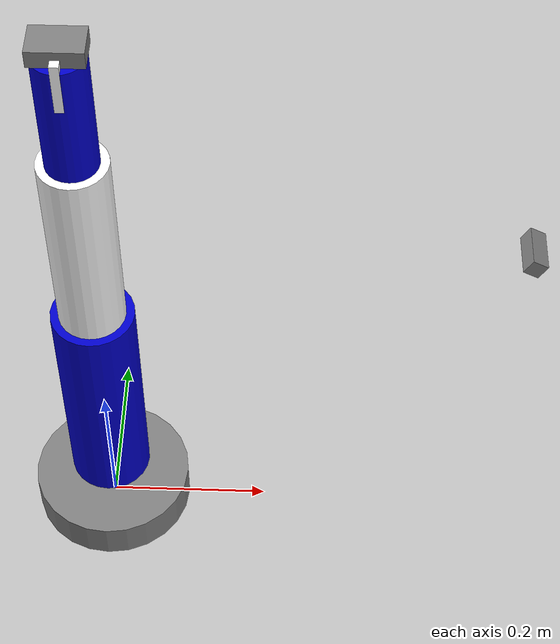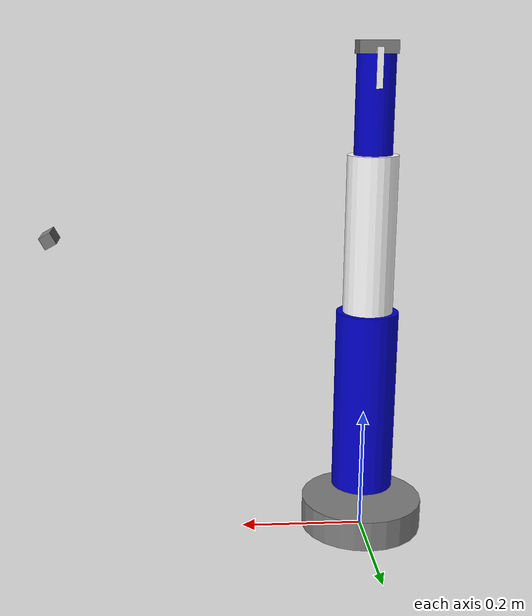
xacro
<?xml version="1.0"?>
<robot xmlns:xacro="http://www.ros.org/wiki/xacro" name="robot_arm">

  <!-- Constants -->
  <xacro:property name="PI" value="3.14159265359"/>

  <!-- Material definitions -->
  <material name="blue">
    <color rgba="0.0 0.0 0.8 1.0"/>
  </material>

  <material name="white">
    <color rgba="1.0 1.0 1.0 1.0"/>
  </material>

  <material name="grey">
    <color rgba="0.5 0.5 0.5 1.0"/>
  </material>

  <!-- World link (fixed reference) -->
  <link name="world"/>

  <!-- Base link -->
  <link name="base_link">
    <visual>
      <geometry>
        <cylinder radius="0.1" length="0.05"/>
      </geometry>
      <material name="grey"/>
    </visual>
    <collision>
      <geometry>
        <cylinder radius="0.1" length="0.05"/>
      </geometry>
    </collision>
    <inertial>
      <mass value="1.0"/>
      <inertia ixx="0.001" ixy="0.0" ixz="0.0" iyy="0.001" iyz="0.0" izz="0.001"/>
    </inertial>
  </link>

  <joint name="world_to_base" type="fixed">
    <parent link="world"/>
    <child link="base_link"/>
    <origin xyz="0 0 0.025" rpy="0 0 0"/>
  </joint>

  <!-- Link 1 (shoulder) -->
  <link name="link1">
    <visual>
      <geometry>
        <cylinder radius="0.05" length="0.3"/>
      </geometry>
      <origin xyz="0 0 0.15" rpy="0 0 0"/>
      <material name="blue"/>
    </visual>
    <collision>
      <geometry>
        <cylinder radius="0.05" length="0.3"/>
      </geometry>
      <origin xyz="0 0 0.15" rpy="0 0 0"/>
    </collision>
    <inertial>
      <mass value="0.5"/>
      <origin xyz="0 0 0.15" rpy="0 0 0"/>
      <inertia ixx="0.004" ixy="0.0" ixz="0.0" iyy="0.004" iyz="0.0" izz="0.001"/>
    </inertial>
  </link>

  <joint name="joint1" type="revolute">
    <parent link="base_link"/>
    <child link="link1"/>
    <origin xyz="0 0 0.05" rpy="0 0 0"/>
    <axis xyz="0 0 1"/>
    <limit lower="${-PI}" upper="${PI}" effort="100" velocity="1.0"/>
    <dynamics damping="10.0" friction="1.0"/>
  </joint>

  <!-- Link 2 (elbow) -->
  <link name="link2">
    <visual>
      <geometry>
        <cylinder radius="0.04" length="0.25"/>
      </geometry>
      <origin xyz="0 0 0.125" rpy="0 0 0"/>
      <material name="white"/>
    </visual>
    <collision>
      <geometry>
        <cylinder radius="0.04" length="0.25"/>
      </geometry>
      <origin xyz="0 0 0.125" rpy="0 0 0"/>
    </collision>
    <inertial>
      <mass value="0.3"/>
      <origin xyz="0 0 0.125" rpy="0 0 0"/>
      <inertia ixx="0.002" ixy="0.0" ixz="0.0" iyy="0.002" iyz="0.0" izz="0.0005"/>
    </inertial>
  </link>

  <joint name="joint2" type="revolute">
    <parent link="link1"/>
    <child link="link2"/>
    <origin xyz="0 0 0.3" rpy="0 0 0"/>
    <axis xyz="0 1 0"/>
    <limit lower="${-PI/2}" upper="${PI/2}" effort="50" velocity="1.0"/>
    <dynamics damping="10.0" friction="1.0"/>
  </joint>

  <!-- Link 3 (wrist) -->
  <link name="link3">
    <visual>
      <geometry>
        <cylinder radius="0.03" length="0.15"/>
      </geometry>
      <origin xyz="0 0 0.075" rpy="0 0 0"/>
      <material name="blue"/>
    </visual>
    <collision>
      <geometry>
        <cylinder radius="0.03" length="0.15"/>
      </geometry>
      <origin xyz="0 0 0.075" rpy="0 0 0"/>
    </collision>
    <inertial>
      <mass value="0.2"/>
      <origin xyz="0 0 0.075" rpy="0 0 0"/>
      <inertia ixx="0.0005" ixy="0.0" ixz="0.0" iyy="0.0005" iyz="0.0" izz="0.0002"/>
    </inertial>
  </link>

  <joint name="joint3" type="revolute">
    <parent link="link2"/>
    <child link="link3"/>
    <origin xyz="0 0 0.25" rpy="0 0 0"/>
    <axis xyz="0 1 0"/>
    <limit lower="${-PI/2}" upper="${PI/2}" effort="30" velocity="1.0"/>
    <dynamics damping="10.0" friction="1.0"/>
  </joint>

  <!-- Gripper base -->
  <link name="gripper_base">
    <visual>
      <geometry>
        <box size="0.06 0.04 0.02"/>
      </geometry>
      <material name="grey"/>
    </visual>
    <collision>
      <geometry>
        <box size="0.06 0.04 0.02"/>
      </geometry>
    </collision>
    <inertial>
      <mass value="0.1"/>
      <inertia ixx="0.0001" ixy="0.0" ixz="0.0" iyy="0.0001" iyz="0.0" izz="0.0001"/>
    </inertial>
  </link>

  <joint name="wrist_to_gripper" type="fixed">
    <parent link="link3"/>
    <child link="gripper_base"/>
    <origin xyz="0 0 0.16" rpy="0 0 0"/>
  </joint>

  <!-- Left gripper finger -->
  <link name="gripper_left">
    <visual>
      <geometry>
        <box size="0.01 0.02 0.06"/>
      </geometry>
      <origin xyz="0 0 -0.03" rpy="0 0 0"/>
      <material name="white"/>
    </visual>
    <collision>
      <geometry>
        <box size="0.01 0.02 0.06"/>
      </geometry>
      <origin xyz="0 0 -0.03" rpy="0 0 0"/>
    </collision>
    <inertial>
      <mass value="0.05"/>
      <origin xyz="0 0 -0.03" rpy="0 0 0"/>
      <inertia ixx="0.00001" ixy="0.0" ixz="0.0" iyy="0.00001" iyz="0.0" izz="0.00001"/>
    </inertial>
  </link>

  <joint name="gripper_left_joint" type="prismatic">
    <parent link="gripper_base"/>
    <child link="gripper_left"/>
    <origin xyz="0 0.02 0" rpy="0 0 0"/>
    <axis xyz="0 1 0"/>
    <limit lower="0" upper="0.03" effort="10" velocity="0.1"/>
  </joint>

  <!-- Right gripper finger -->
  <link name="gripper_right">
    <visual>
      <geometry>
        <box size="0.01 0.02 0.06"/>
      </geometry>
      <origin xyz="0 0 -0.03" rpy="0 0 0"/>
      <material name="white"/>
    </visual>
    <collision>
      <geometry>
        <box size="0.01 0.02 0.06"/>
      </geometry>
      <origin xyz="0 0 -0.03" rpy="0 0 0"/>
    </collision>
    <inertial>
      <mass value="0.05"/>
      <origin xyz="0 0 -0.03" rpy="0 0 0"/>
      <inertia ixx="0.00001" ixy="0.0" ixz="0.0" iyy="0.00001" iyz="0.0" izz="0.00001"/>
    </inertial>
  </link>

  <joint name="gripper_right_joint" type="prismatic">
    <parent link="gripper_base"/>
    <child link="gripper_right"/>
    <origin xyz="0 -0.02 0" rpy="0 0 0"/>
    <axis xyz="0 1 0"/>
    <limit lower="-0.03" upper="0" effort="10" velocity="0.1"/>
  </joint>

  <!-- Gazebo plugins and controllers -->
  <gazebo>
    <plugin name="gazebo_ros_control" filename="libgazebo_ros_control.so">
      <robotNamespace>/robot_arm</robotNamespace>
      <robotSimType>gazebo_ros_control/DefaultRobotHWSim</robotSimType>
      <legacyModeNS>true</legacyModeNS>
    </plugin>
  </gazebo>

  <!-- PID gains for Gazebo -->
  <gazebo>
    <plugin name="gazebo_ros_control" filename="libgazebo_ros_control.so">
      <robotNamespace>/robot_arm</robotNamespace>
      <controlPeriod>0.001</controlPeriod>
      <robotSimType>gazebo_ros_control/DefaultRobotHWSim</robotSimType>
    </plugin>
  </gazebo>

  <!-- Transmission for joint1 -->
  <transmission name="trans_joint1">
    <type>transmission_interface/SimpleTransmission</type>
    <joint name="joint1">
      <hardwareInterface>hardware_interface/PositionJointInterface</hardwareInterface>
    </joint>
    <actuator name="motor1">
      <hardwareInterface>hardware_interface/PositionJointInterface</hardwareInterface>
      <mechanicalReduction>1</mechanicalReduction>
    </actuator>
  </transmission>

  <!-- Transmission for joint2 -->
  <transmission name="trans_joint2">
    <type>transmission_interface/SimpleTransmission</type>
    <joint name="joint2">
      <hardwareInterface>hardware_interface/PositionJointInterface</hardwareInterface>
    </joint>
    <actuator name="motor2">
      <hardwareInterface>hardware_interface/PositionJointInterface</hardwareInterface>
      <mechanicalReduction>1</mechanicalReduction>
    </actuator>
  </transmission>

  <!-- Transmission for joint3 -->
  <transmission name="trans_joint3">
    <type>transmission_interface/SimpleTransmission</type>
    <joint name="joint3">
      <hardwareInterface>hardware_interface/PositionJointInterface</hardwareInterface>
    </joint>
    <actuator name="motor3">
      <hardwareInterface>hardware_interface/PositionJointInterface</hardwareInterface>
      <mechanicalReduction>1</mechanicalReduction>
    </actuator>
  </transmission>

  <!-- Camera link for vision -->
  <link name="camera_link">
    <visual>
      <geometry>
        <box size="0.02 0.05 0.02"/>
      </geometry>
      <material name="grey"/>
    </visual>
    <inertial>
      <mass value="0.01"/>
      <inertia ixx="0.00001" ixy="0.0" ixz="0.0" iyy="0.00001" iyz="0.0" izz="0.00001"/>
    </inertial>
  </link>

  <joint name="camera_joint" type="fixed">
    <parent link="world"/>
    <child link="camera_link"/>
    <origin xyz="0.5 0 0.5" rpy="0 0.5 0"/>
  </joint>

  <!-- Camera sensor -->
  <gazebo reference="camera_link">
    <sensor type="camera" name="workspace_camera">
      <update_rate>30.0</update_rate>
      <camera name="head">
        <horizontal_fov>1.3962634</horizontal_fov>
        <image>
          <width>640</width>
          <height>480</height>
          <format>R8G8B8</format>
        </image>
        <clip>
          <near>0.02</near>
          <far>300</far>
        </clip>
      </camera>
      <plugin name="camera_controller" filename="libgazebo_ros_camera.so">
        <alwaysOn>true</alwaysOn>
        <updateRate>0.0</updateRate>
        <cameraName>robot_arm/camera</cameraName>
        <imageTopicName>image_raw</imageTopicName>
        <cameraInfoTopicName>camera_info</cameraInfoTopicName>
        <frameName>camera_link</frameName>
      </plugin>
    </sensor>
  </gazebo>

</robot>
